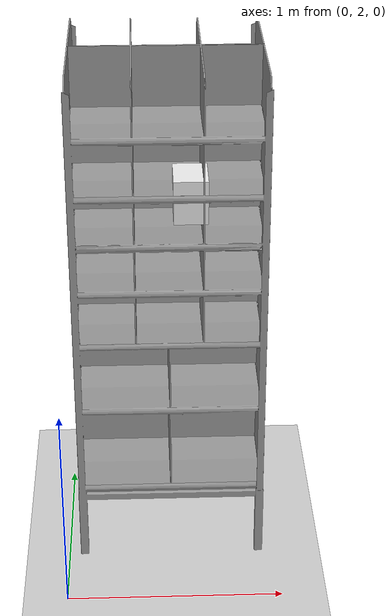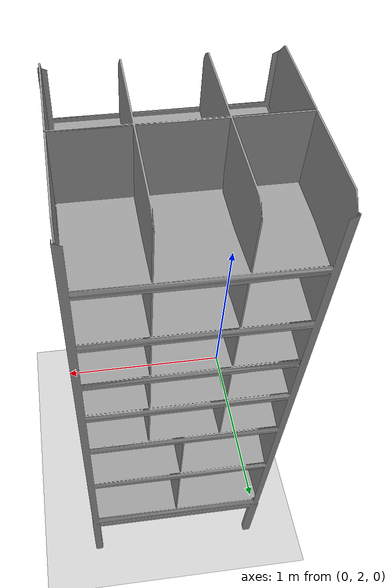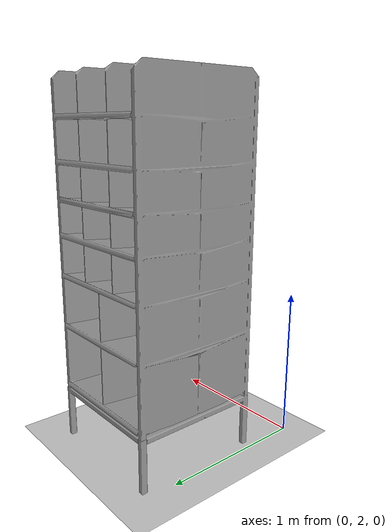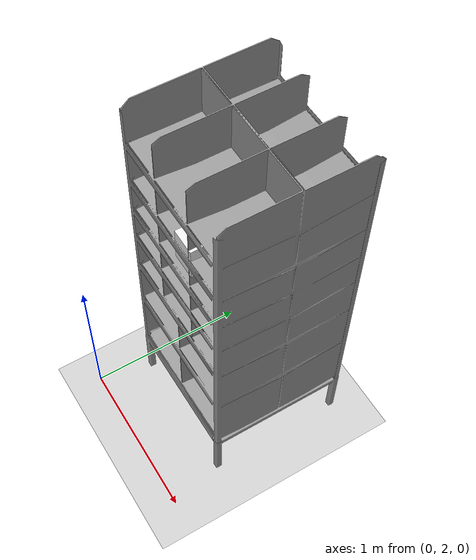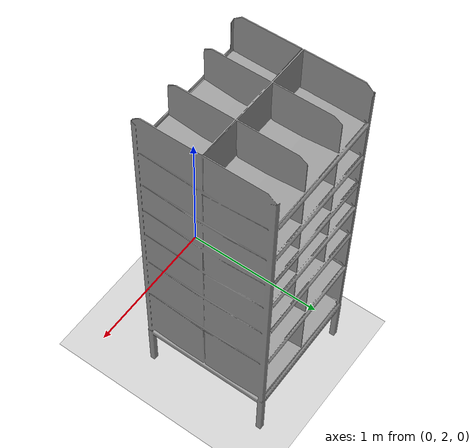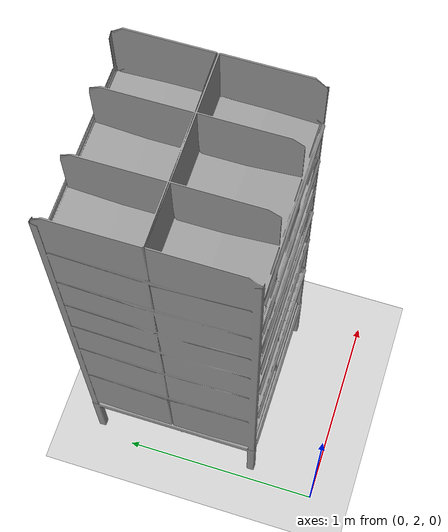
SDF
<sdf version="1.6">
 <world name="default">
  <plugin name="ros_link_attacher_plugin" filename="libgazebo_ros_link_attacher.so"/>
  <light name="sun" type="directional">
   <pose>0 0 10 0 -0 0</pose>
   <diffuse>0.8 0.8 0.8 1</diffuse>
   <specular>0.2 0.2 0.2 1</specular>
   <attenuation>
    <range>1000</range>
    <constant>0.9</constant>
    <linear>0.01</linear>
    <quadratic>0.001</quadratic>
   </attenuation>
   <direction>-0.5 0.1 -0.9</direction>
  </light>
  <model name="ground_plane">
   <static>1</static>
   <link name="link">
    <collision name="collision">
     <geometry><plane><normal>0 0 1</normal><size>100 100</size></plane></geometry>
     <surface><friction><ode><mu>100</mu><mu2>50</mu2></ode></friction></surface>
    </collision>
    <visual name="visual">
     <cast_shadows>0</cast_shadows>
     <geometry><plane><normal>0 0 1</normal><size>100 100</size></plane></geometry>
     <material>
      <script><uri>file://media/materials/scripts/gazebo.material</uri><name>Gazebo/Grey</name></script>
     </material>
    </visual>
   </link>
  </model>
  <gravity>0 0 -9.8</gravity>
  <magnetic_field>6e-06 2.3e-05 -4.2e-05</magnetic_field>
  <atmosphere type="adiabatic"/>
  <physics name="default_physics" default="0" type="ode">
   <max_step_size>0.001</max_step_size>
   <real_time_factor>1</real_time_factor>
   <real_time_update_rate>1000</real_time_update_rate>
  </physics>
  <scene><ambient>0.4 0.4 0.4 1</ambient><background>0.7 0.7 0.7 1</background><shadows>1</shadows></scene>
  <spherical_coordinates>
   <surface_model>EARTH_WGS84</surface_model>
   <latitude_deg>0</latitude_deg>
   <longitude_deg>0</longitude_deg>
   <elevation>0</elevation>
   <heading_deg>0</heading_deg>
  </spherical_coordinates>
  <model name="package_mumbai">
   <static>0</static>
   <link name="link">
    <inertial>
     <mass>1</mass>
     <inertia><ixx>0.01</ixx><ixy>0</ixy><ixz>0</ixz><iyy>0.01</iyy><iyz>0</iyz><izz>0.01</izz></inertia>
    </inertial>
    <collision name="stairs_collision0">
     <geometry><box><size>0.151329 0.2 0.2</size></box></geometry>
     <surface>
      <friction><ode><mu>1</mu><mu2>1</mu2></ode></friction>
      <contact><ode><kp>1e+07</kp><kd>1</kd><min_depth>0</min_depth><max_vel>0</max_vel></ode></contact>
     </surface>
    </collision>
    <visual name="stairs_visual0">
     <geometry><box><size>0.151329 0.2 0.2</size></box></geometry>
     <material>
      <script><uri>file://media/materials/scripts/gazebo.material</uri><name>Gazebo/White</name></script>
     </material>
    </visual>
    <velocity_decay><linear>0</linear><angular>0</angular></velocity_decay>
   </link>
   <pose>0.585675 2.44671 1.85282 0 -0 0</pose>
  </model>
  <model name="Amazon Pod">
   <link name="pod_link">
    <inertial>
     <pose>0 0 1.2045 0 -0 0</pose>
     <mass>76.26</mass>
     <inertia>
      <ixx>47</ixx>
      <ixy>-0.003456</ixy>
      <ixz>0.001474</ixz>
      <izz>13.075</izz>
      <iyz>-0.014439</iyz>
      <iyy>47</iyy>
     </inertia>
    </inertial>
    <visual name="pod_visual">
     <pose>0 0 0 1.5707 -0 0</pose>
     <material>
      <script><uri>file://media/materials/scripts/gazebo.material</uri><name>Gazebo/Grey</name></script>
     </material>
     <geometry><mesh><uri>model://kiva_pod/meshes/pod_lowres.stl</uri></mesh></geometry>
    </visual>
    <collision name="pod_collision">
     <pose>0 0 0 1.5707 -0 0</pose>
     <geometry><mesh><uri>model://kiva_pod/meshes/pod_lowres.stl</uri></mesh></geometry>
     <surface>
      <friction><ode><mu>0.8</mu><mu2>0.8</mu2><fdir1>0 0 0</fdir1><slip1>1</slip1><slip2>1</slip2></ode></friction>
     </surface>
    </collision>
   </link>
   <pose>0.489611 2.76764 -3e-06 9.4e-05 6e-06 0.000562</pose>
  </model>
 </world>
</sdf>
